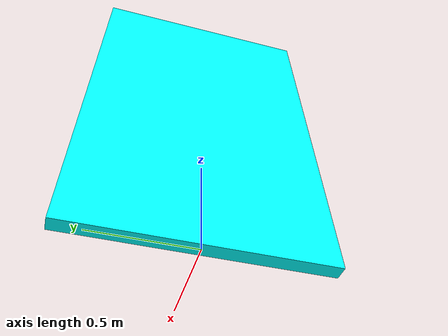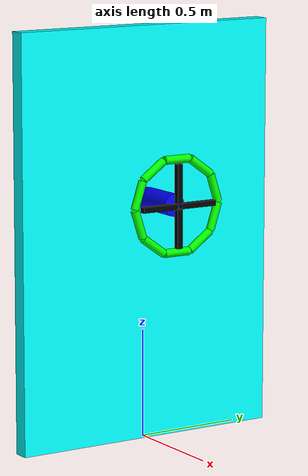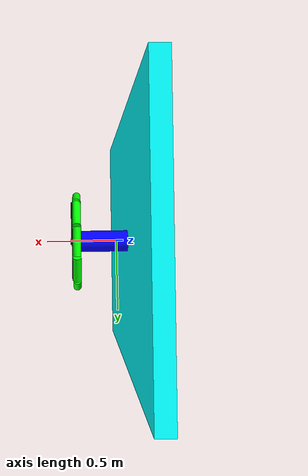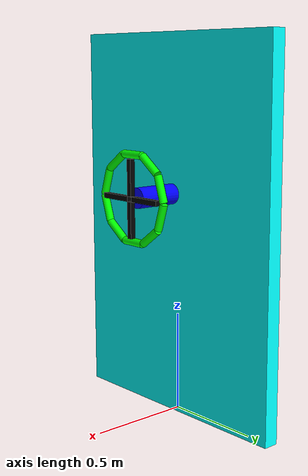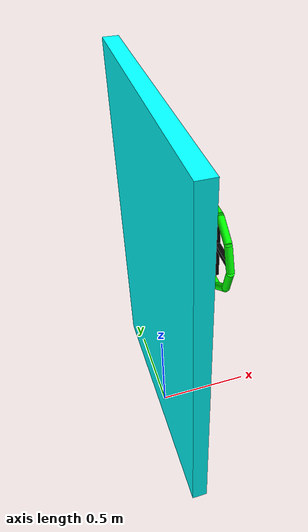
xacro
<robot xmlns:xacro="http://ros.org/wiki/xacro"
  name="valve_wall">
  <xacro:property name="inches" value="0.0254"/>
  <xacro:include filename="torus.xacro"/>
  <link name="base_link">
    <inertial>
      <origin xyz="0 0 0.9525"
        rpy="0 0 0" />
      <mass value="17.8262" />
      <inertia
        ixx="5.3996"
        ixy="0"
        ixz="0"
        iyy="2.5014"
        iyz="0"
        izz="7.8838" />
    </inertial>
    <visual>
      <origin xyz="0 0 0.9525"
        rpy="0 0 0" />
      <geometry>
        <box size=".0762 1.2954 1.905" />
      </geometry>
      <material name="">
        <color rgba="0 1 1 1" />
      </material>
    </visual>
<collision>
  <origin xyz="0 0 0.9525"
        rpy="0 0 0" />
      <geometry>
        <box size=".0762 1.2954 1.905" />
      </geometry>
      <material name="">
        <color rgba="0 1 1 1" />
      </material>
</collision>
<visual>
      <origin xyz="0.150815 0 1.12078"
        rpy="0 1.57079633 0" />
      <geometry>
        <cylinder length=".22543" radius=".0508"/>
      </geometry>
      <material name="">
        <color rgba="0 0 1 1" />
      </material>
    </visual>
  </link>

  <link name="Valve_18">
    <inertial>
      <origin xyz="0 0 0"
        rpy="0 0 0" />
      <mass value="12.9" />
      <inertia
        ixx="0.342175"
        ixy="0"
        ixz="0"
        iyy="0.200005"
        iyz="0"
        izz="0.200005" />
    </inertial>
    <visual>
      <origin xyz="${0.6*inches} 0 0.1016"
        rpy="0 0 0" />
      <geometry>
        <box size=".0254 .0254 .1778"/>
      </geometry>
      <material name="">
        <color rgba="0 0 0 0" />
      </material>
    </visual>
    <visual>
      <origin xyz=".01524 0 -0.1016"
        rpy="0 0 0" />
      <geometry>
        <box size=".0254 .0254 .1778"/>
      </geometry>
      <material name="">
        <color rgba="0 0 0 0" />
      </material>
    </visual>
    <visual>
      <origin xyz=".0124 0.1016 0"
        rpy="0 0 0" />
      <geometry>
        <box size=".0254 .1778 .0254"/>
      </geometry>
      <material name="">
        <color rgba="0 0 0 0" />
      </material>
    </visual>
    <visual>
      <origin xyz=".01524 -0.1016 0"
        rpy="0 0 0" />
      <geometry>
        <box size=".0254 .1778 .0254"/>
      </geometry>
      <material name="">
        <color rgba="0 0 0 0" />
      </material>
    </visual>
  </link>
  <xacro:torus parent_link="Valve_18" xyz="0 0 0" rpy="0 ${pi/2} 0" major_radius="${8.25*inches}" minor_radius="${0.75*inches}"/>

  <joint
    name="Big_Valve"
    type="continuous">
    <parent link="base_link" />
    <child link="Valve_18" />
    <origin xyz=".28258 0 1.12078" />
    <axis xyz="1 0 0" />
    <dynamics damping="5" friction="5"/>
  </joint>

</robot>

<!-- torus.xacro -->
<robot xmlns:xacro="http://ros.org/wiki/xacro" name="torus">
  <xacro:property name="pi" value="3.1416"/>
  <!-- Custom MIT XACRO defining visual and collision geometry for a torus -->
  <xacro:macro name="torus-segment-geometry" params="major_radius minor_radius num_segments">
    <origin xyz="${major_radius} 0 0" rpy="${pi/2} 0 0"/>
    <geometry>
      <cylinder length="${2*pi*major_radius/num_segments}" radius="${minor_radius}"/>
    </geometry>
  </xacro:macro>

  <xacro:macro name="torus-segment" params="parent_link major_radius minor_radius num_segments which_segment">
    <link name="${parent_link}_torus_segment_${which_segment}">
      <visual>
        <xacro:torus-segment-geometry
          major_radius="${major_radius}"
          minor_radius="${minor_radius}"
          num_segments="${num_segments}"
          />
        <material name="">
          <color rgba="0 1 0 1" />
        </material>
      </visual>
      <collision>
        <xacro:torus-segment-geometry
          major_radius="${major_radius}"
          minor_radius="${minor_radius}"
          num_segments="${num_segments}"
          />
      </collision>
    </link>
    <joint name="${parent_link}_torus_segment_${which_segment}_joint" type="fixed">
      <origin xyz="0 0 0" rpy="0 0 ${which_segment*2*pi/num_segments}"/>
      <parent link="${parent_link}_torus"/>
      <child link="${parent_link}_torus_segment_${which_segment}"/>
    </joint>
  </xacro:macro>

  <xacro:macro name="torus" params="parent_link  xyz rpy major_radius minor_radius">
    <link name="${parent_link}_torus"/>
    <joint name="${parent_link}_torus_fixed_joint" type="fixed">
      <origin xyz="${xyz}" rpy="${rpy}"/>
      <parent link="${parent_link}"/>
      <child link="${parent_link}_torus"/>
    </joint>
    <xacro:torus-segment parent_link="${parent_link}" major_radius="${major_radius}" minor_radius="${minor_radius}" num_segments="10" which_segment="0"/>
    <xacro:torus-segment parent_link="${parent_link}" major_radius="${major_radius}" minor_radius="${minor_radius}" num_segments="10" which_segment="1"/>
    <xacro:torus-segment parent_link="${parent_link}" major_radius="${major_radius}" minor_radius="${minor_radius}" num_segments="10" which_segment="2"/>
    <xacro:torus-segment parent_link="${parent_link}" major_radius="${major_radius}" minor_radius="${minor_radius}" num_segments="10" which_segment="3"/>
    <xacro:torus-segment parent_link="${parent_link}" major_radius="${major_radius}" minor_radius="${minor_radius}" num_segments="10" which_segment="4"/>
    <xacro:torus-segment parent_link="${parent_link}" major_radius="${major_radius}" minor_radius="${minor_radius}" num_segments="10" which_segment="5"/>
    <xacro:torus-segment parent_link="${parent_link}" major_radius="${major_radius}" minor_radius="${minor_radius}" num_segments="10" which_segment="6"/>
    <xacro:torus-segment parent_link="${parent_link}" major_radius="${major_radius}" minor_radius="${minor_radius}" num_segments="10" which_segment="7"/>
    <xacro:torus-segment parent_link="${parent_link}" major_radius="${major_radius}" minor_radius="${minor_radius}" num_segments="10" which_segment="8"/>
    <xacro:torus-segment parent_link="${parent_link}" major_radius="${major_radius}" minor_radius="${minor_radius}" num_segments="10" which_segment="9"/>
  </xacro:macro>
</robot>
